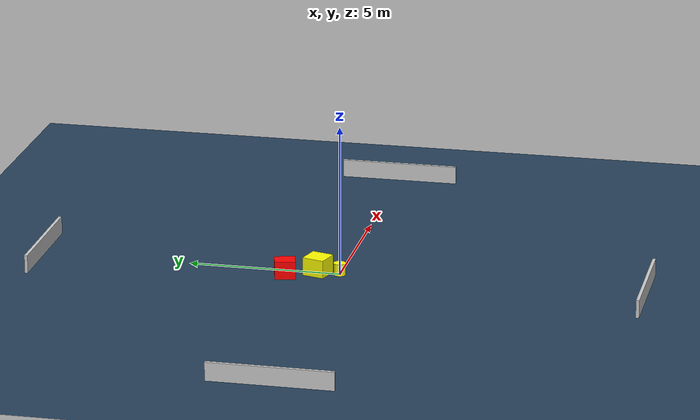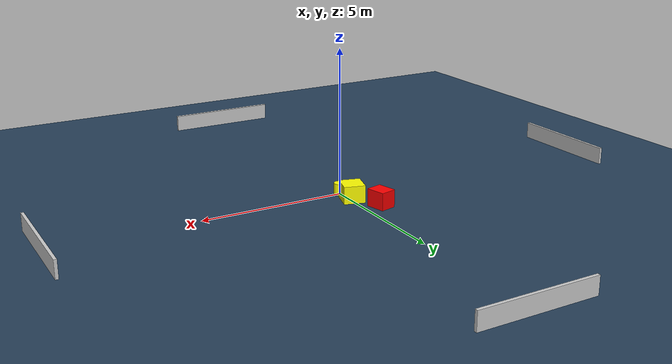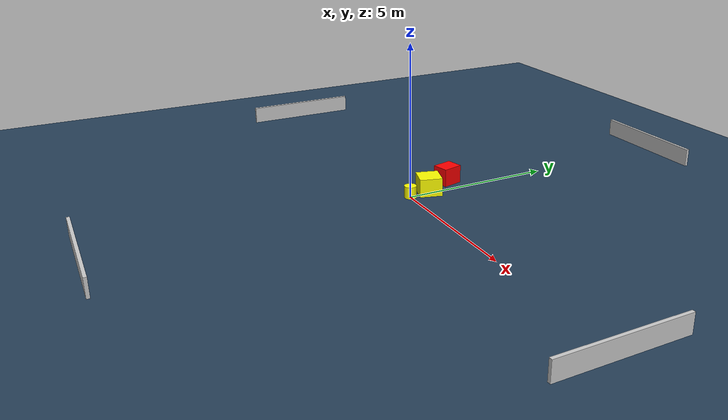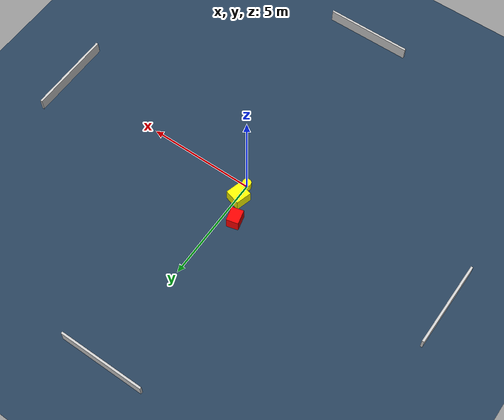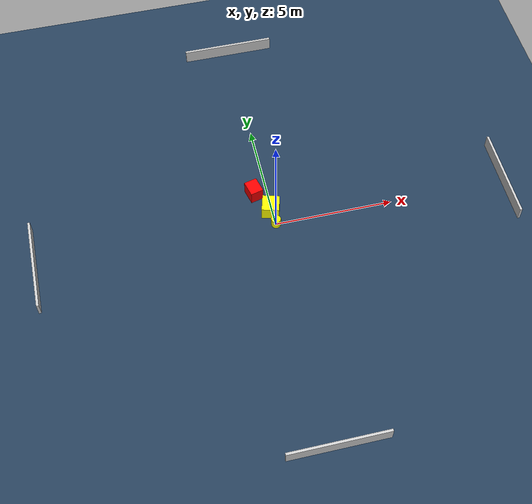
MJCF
<?xml version="1.0" ?>
<mujoco model="generated_environment">
  <option timestep="0.01" integrator="RK4" cone="elliptic"/>
  <default>
    <geom density="1"/>
  </default>
  <asset>
    <texture builtin="gradient" height="3072" name="skybox" rgb1="0.3 0.5 0.7" rgb2="0 0 0" type="skybox" width="512"/>
    <texture builtin="checker" height="300" name="groundplane" rgb1="0.2 0.3 0.4" rgb2="0.1 0.2 0.3" type="2d" width="300"/>
    <material name="groundplane" reflectance="0.2" texrepeat="5 5" texture="groundplane"/>
  </asset>
  <worldbody>
    <light dir="0 0 -1" directional="true" pos="0 0 1.5"/>
    <geom condim="3" friction="0.5 0.005 0.001" material="groundplane" name="floor" pos="0 0 0" size="0 0 0.05" type="plane"/>
    <body name="walls">
      <geom name="wall_1" condim="4" pos="-10.0 0.0 0.3" rgba="0.800000011920929 0.800000011920929 0.800000011920929 1.0" size="0.05 2.0 0.3" type="box"/>
      <geom name="wall_2" condim="4" pos="10.0 0.0 0.3" rgba="0.800000011920929 0.800000011920929 0.800000011920929 1.0" size="0.05 2.0 0.3" type="box"/>
      <geom name="wall_3" condim="4" pos="0.0 -10.0 0.3" rgba="0.800000011920929 0.800000011920929 0.800000011920929 1.0" size="2.0 0.05 0.3" type="box"/>
      <geom name="wall_4" condim="4" pos="0.0 10.0 0.3" rgba="0.800000011920929 0.800000011920929 0.800000011920929 1.0" size="2.0 0.05 0.3" type="box"/>
    </body>
    <body name="robot">
      <joint name="joint_x" type="slide" pos="0 0 0" axis="1 0 0"/>
      <joint name="joint_y" type="slide" pos="0 0 0" axis="0 1 0"/>
      <geom name="robot" type="cylinder" pos="0.0 0.0 0.2" size="0.2 0.2 0.0" mass="5.0" friction="1.0 0.005 0.0001" condim="4" rgba="1.0 1.0 0.0 1.0"/>
    </body>
    <body name="obstacle_1_movable">
      <geom name="obstacle_1_movable" condim="4" pos="-0.06291546279988783 0.7078862273589029 0.3" euler="0 0 164.28457122945613" friction="0.0 0.005 0.001" rgba="1.0 1.0 0.0 1.0" size="0.3623402436618136 0.3695941229587029 0.3" type="box" mass="0.1"/>
      <joint type="free"/>
    </body>
    <body name="obstacle_2_static">
      <geom name="obstacle_2_static" condim="4" pos="-0.5760102693464563 1.6941256004341256 0.3" euler="0 0 193.94641804362894" friction="0.0 0.005 0.001" rgba="1.0 0.0 0.0 1.0" size="0.277412395826845 0.3392791183004551 0.3" type="box"/>
    </body>
  </worldbody>
  <actuator>
    <motor name="actuator_x" joint="joint_x" gear="1" ctrlrange="-1 1"/>
    <motor name="actuator_y" joint="joint_y" gear="1" ctrlrange="-1 1"/>
  </actuator>
</mujoco>
